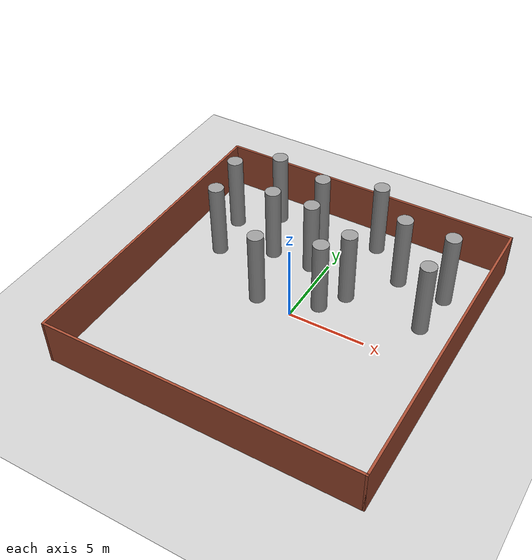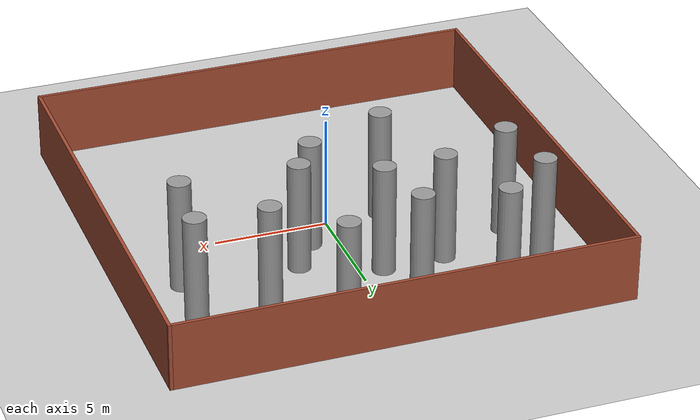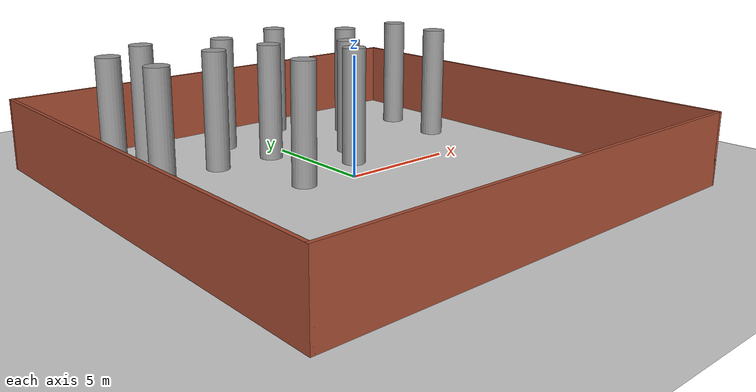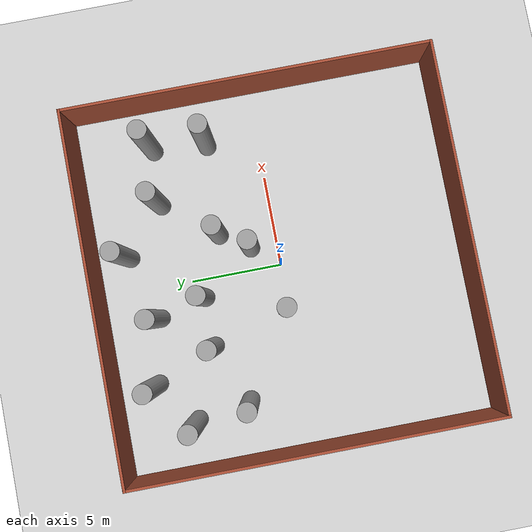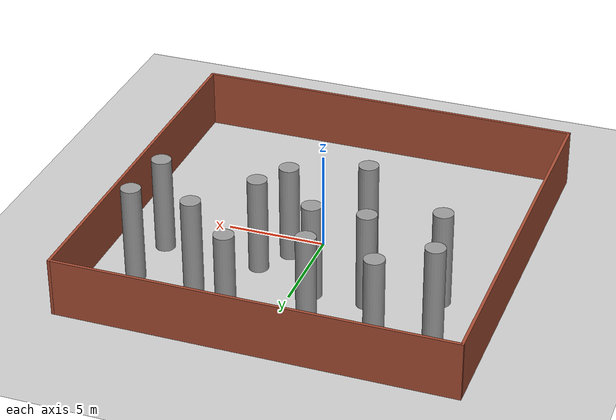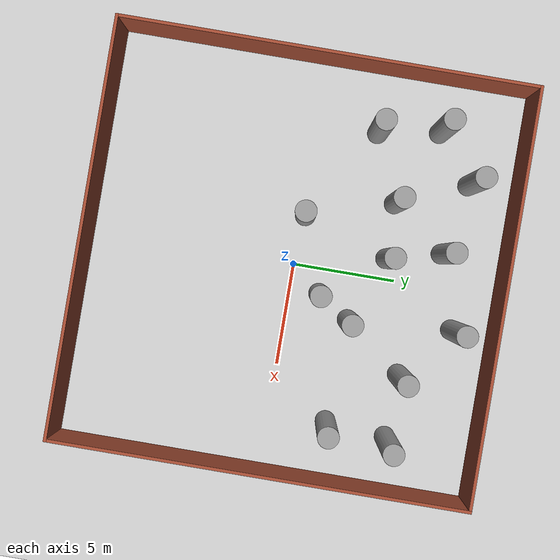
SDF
<sdf version="1.7">
 <world name="default">
  <model name="ground_plane">
   <static>1</static>
   <link name="link">
    <collision name="collision">
     <geometry><plane><normal>0 0 1</normal><size>100 100</size></plane></geometry>
     <surface><friction><ode><mu>100</mu><mu2>50</mu2></ode></friction></surface>
    </collision>
    <visual name="visual">
     <cast_shadows>0</cast_shadows>
     <geometry><plane><normal>0 0 1</normal><size>100 100</size></plane></geometry>
     <material>
      <script><uri>file://media/materials/scripts/gazebo.material</uri><name>Gazebo/Grey</name></script>
     </material>
    </visual>
   </link>
  </model>
  <model name="fence20">
   <link name="Wall_0">
    <collision name="Wall_0_Collision">
     <geometry><box><size>20.15 0.15 3</size></box></geometry>
     <pose>0 0 1.5 0 -0 0</pose>
    </collision>
    <visual name="Wall_0_Visual">
     <pose>0 0 1.5 0 -0 0</pose>
     <geometry><box><size>20.15 0.15 3</size></box></geometry>
     <material>
      <script><uri>file://media/materials/scripts/gazebo.material</uri><name>Gazebo/Bricks</name></script>
      <ambient>1 1 1 1</ambient>
     </material>
     <meta><layer>0</layer></meta>
    </visual>
    <pose>0 -10 0 0 -0 0</pose>
   </link>
   <link name="Wall_1">
    <collision name="Wall_1_Collision">
     <geometry><box><size>20.15 0.15 3</size></box></geometry>
     <pose>0 0 1.5 0 -0 0</pose>
    </collision>
    <visual name="Wall_1_Visual">
     <pose>0 0 1.5 0 -0 0</pose>
     <geometry><box><size>20.15 0.15 3</size></box></geometry>
     <material>
      <script><uri>file://media/materials/scripts/gazebo.material</uri><name>Gazebo/Bricks</name></script>
      <ambient>1 1 1 1</ambient>
     </material>
     <meta><layer>0</layer></meta>
    </visual>
    <pose>10 0 0 0 -0 1.5708</pose>
   </link>
   <link name="Wall_2">
    <collision name="Wall_2_Collision">
     <geometry><box><size>20.15 0.15 3</size></box></geometry>
     <pose>0 0 1.5 0 -0 0</pose>
    </collision>
    <visual name="Wall_2_Visual">
     <pose>0 0 1.5 0 -0 0</pose>
     <geometry><box><size>20.15 0.15 3</size></box></geometry>
     <material>
      <script><uri>file://media/materials/scripts/gazebo.material</uri><name>Gazebo/Bricks</name></script>
      <ambient>1 1 1 1</ambient>
     </material>
     <meta><layer>0</layer></meta>
    </visual>
    <pose>0 10 0 0 -0 3.14159</pose>
   </link>
   <link name="Wall_3">
    <collision name="Wall_3_Collision">
     <geometry><box><size>20.15 0.15 3</size></box></geometry>
     <pose>0 0 1.5 0 -0 0</pose>
    </collision>
    <visual name="Wall_3_Visual">
     <pose>0 0 1.5 0 -0 0</pose>
     <geometry><box><size>20.15 0.15 3</size></box></geometry>
     <material>
      <script><uri>file://media/materials/scripts/gazebo.material</uri><name>Gazebo/Bricks</name></script>
      <ambient>1 1 1 1</ambient>
     </material>
     <meta><layer>0</layer></meta>
    </visual>
    <pose>-10 0 0 0 -0 -1.5708</pose>
   </link>
   <static>1</static>
  </model>
  <model name="cylinder5">
   <link name="link">
    <inertial>
     <mass>1</mass>
     <inertia><ixx>0.145833</ixx><ixy>0</ixy><ixz>0</ixz><iyy>0.145833</iyy><iyz>0</iyz><izz>0.125</izz></inertia>
    </inertial>
    <kinematic>1</kinematic>
    <visual name="visual">
     <geometry><cylinder><radius>0.5</radius><length>5</length></cylinder></geometry>
     <material>
      <script><name>Gazebo/Grey</name><uri>file://media/materials/scripts/gazebo.material</uri></script>
      <shader type="pixel"><normal_map>__default__</normal_map></shader>
      <ambient>0.3 0.3 0.3 1</ambient>
      <diffuse>0.7 0.7 0.7 1</diffuse>
      <specular>0.01 0.01 0.01 1</specular>
      <emissive>0 0 0 1</emissive>
     </material>
    </visual>
    <collision name="collision">
     <geometry><cylinder><radius>0.5</radius><length>5</length></cylinder></geometry>
     <surface>
      <friction>
       <ode><mu>1</mu><mu2>1</mu2><fdir1>0 0 0</fdir1><slip1>0</slip1><slip2>0</slip2></ode>
       <torsional>
        <coefficient>1</coefficient>
        <patch_radius>0</patch_radius>
        <surface_radius>0</surface_radius>
        <use_patch_radius>1</use_patch_radius>
        <ode><slip>0</slip></ode>
       </torsional>
      </friction>
      <bounce><restitution_coefficient>0</restitution_coefficient><threshold>1e+06</threshold></bounce>
      <contact>
       <collide_without_contact>0</collide_without_contact>
       <collide_without_contact_bitmask>1</collide_without_contact_bitmask>
       <collide_bitmask>1</collide_bitmask>
       <ode>
        <soft_cfm>0</soft_cfm>
        <soft_erp>0.2</soft_erp>
        <kp>1e+13</kp>
        <kd>1</kd>
        <max_vel>0.01</max_vel>
        <min_depth>0</min_depth>
       </ode>
       <bullet>
        <split_impulse>1</split_impulse>
        <split_impulse_penetration_threshold>-0.01</split_impulse_penetration_threshold>
        <soft_cfm>0</soft_cfm>
        <soft_erp>0.2</soft_erp>
        <kp>1e+13</kp>
        <kd>1</kd>
       </bullet>
      </contact>
     </surface>
    </collision>
   </link>
   <static>0</static>
   <pose>-2.40539 0.17002 2.62778 0.004453 0.005366 -0.005026</pose>
  </model>
  <model name="cylinder5_clone_9">
   <link name="link">
    <inertial>
     <mass>1</mass>
     <inertia><ixx>0.145833</ixx><ixy>0</ixy><ixz>0</ixz><iyy>0.145833</iyy><iyz>0</iyz><izz>0.125</izz></inertia>
    </inertial>
    <kinematic>1</kinematic>
    <visual name="visual">
     <geometry><cylinder><radius>0.5</radius><length>5</length></cylinder></geometry>
     <material>
      <script><name>Gazebo/Grey</name><uri>file://media/materials/scripts/gazebo.material</uri></script>
      <shader type="pixel"><normal_map>__default__</normal_map></shader>
      <ambient>0.3 0.3 0.3 1</ambient>
      <diffuse>0.7 0.7 0.7 1</diffuse>
      <specular>0.01 0.01 0.01 1</specular>
      <emissive>0 0 0 1</emissive>
     </material>
    </visual>
    <collision name="collision">
     <geometry><cylinder><radius>0.5</radius><length>5</length></cylinder></geometry>
     <surface>
      <friction>
       <ode><mu>1</mu><mu2>1</mu2><fdir1>0 0 0</fdir1><slip1>0</slip1><slip2>0</slip2></ode>
       <torsional>
        <coefficient>1</coefficient>
        <patch_radius>0</patch_radius>
        <surface_radius>0</surface_radius>
        <use_patch_radius>1</use_patch_radius>
        <ode><slip>0</slip></ode>
       </torsional>
      </friction>
      <bounce><restitution_coefficient>0</restitution_coefficient><threshold>1e+06</threshold></bounce>
      <contact>
       <collide_without_contact>0</collide_without_contact>
       <collide_without_contact_bitmask>1</collide_without_contact_bitmask>
       <collide_bitmask>1</collide_bitmask>
       <ode>
        <soft_cfm>0</soft_cfm>
        <soft_erp>0.2</soft_erp>
        <kp>1e+13</kp>
        <kd>1</kd>
        <max_vel>0.01</max_vel>
        <min_depth>0</min_depth>
       </ode>
       <bullet>
        <split_impulse>1</split_impulse>
        <split_impulse_penetration_threshold>-0.01</split_impulse_penetration_threshold>
        <soft_cfm>0</soft_cfm>
        <soft_erp>0.2</soft_erp>
        <kp>1e+13</kp>
        <kd>1</kd>
       </bullet>
      </contact>
     </surface>
    </collision>
   </link>
   <static>0</static>
   <pose>7.62645 5.81246 2.52877 0.001005 0.001206 -0.001</pose>
  </model>
  <model name="cylinder5_clone_10">
   <link name="link">
    <inertial>
     <mass>1</mass>
     <inertia><ixx>0.145833</ixx><ixy>0</ixy><ixz>0</ixz><iyy>0.145833</iyy><iyz>0</iyz><izz>0.125</izz></inertia>
    </inertial>
    <kinematic>1</kinematic>
    <visual name="visual">
     <geometry><cylinder><radius>0.5</radius><length>5</length></cylinder></geometry>
     <material>
      <script><name>Gazebo/Grey</name><uri>file://media/materials/scripts/gazebo.material</uri></script>
      <shader type="pixel"><normal_map>__default__</normal_map></shader>
      <ambient>0.3 0.3 0.3 1</ambient>
      <diffuse>0.7 0.7 0.7 1</diffuse>
      <specular>0.01 0.01 0.01 1</specular>
      <emissive>0 0 0 1</emissive>
     </material>
    </visual>
    <collision name="collision">
     <geometry><cylinder><radius>0.5</radius><length>5</length></cylinder></geometry>
     <surface>
      <friction>
       <ode><mu>1</mu><mu2>1</mu2><fdir1>0 0 0</fdir1><slip1>0</slip1><slip2>0</slip2></ode>
       <torsional>
        <coefficient>1</coefficient>
        <patch_radius>0</patch_radius>
        <surface_radius>0</surface_radius>
        <use_patch_radius>1</use_patch_radius>
        <ode><slip>0</slip></ode>
       </torsional>
      </friction>
      <bounce><restitution_coefficient>0</restitution_coefficient><threshold>1e+06</threshold></bounce>
      <contact>
       <collide_without_contact>0</collide_without_contact>
       <collide_without_contact_bitmask>1</collide_without_contact_bitmask>
       <collide_bitmask>1</collide_bitmask>
       <ode>
        <soft_cfm>0</soft_cfm>
        <soft_erp>0.2</soft_erp>
        <kp>1e+13</kp>
        <kd>1</kd>
        <max_vel>0.01</max_vel>
        <min_depth>0</min_depth>
       </ode>
       <bullet>
        <split_impulse>1</split_impulse>
        <split_impulse_penetration_threshold>-0.01</split_impulse_penetration_threshold>
        <soft_cfm>0</soft_cfm>
        <soft_erp>0.2</soft_erp>
        <kp>1e+13</kp>
        <kd>1</kd>
       </bullet>
      </contact>
     </surface>
    </collision>
   </link>
   <static>0</static>
   <pose>7.35491 2.81834 2.52877 0.001005 0.001206 -0.001</pose>
  </model>
  <model name="cylinder5_clone_11">
   <link name="link">
    <inertial>
     <mass>1</mass>
     <inertia><ixx>0.145833</ixx><ixy>0</ixy><ixz>0</ixz><iyy>0.145833</iyy><iyz>0</iyz><izz>0.125</izz></inertia>
    </inertial>
    <kinematic>1</kinematic>
    <visual name="visual">
     <geometry><cylinder><radius>0.5</radius><length>5</length></cylinder></geometry>
     <material>
      <script><name>Gazebo/Grey</name><uri>file://media/materials/scripts/gazebo.material</uri></script>
      <shader type="pixel"><normal_map>__default__</normal_map></shader>
      <ambient>0.3 0.3 0.3 1</ambient>
      <diffuse>0.7 0.7 0.7 1</diffuse>
      <specular>0.01 0.01 0.01 1</specular>
      <emissive>0 0 0 1</emissive>
     </material>
    </visual>
    <collision name="collision">
     <geometry><cylinder><radius>0.5</radius><length>5</length></cylinder></geometry>
     <surface>
      <friction>
       <ode><mu>1</mu><mu2>1</mu2><fdir1>0 0 0</fdir1><slip1>0</slip1><slip2>0</slip2></ode>
       <torsional>
        <coefficient>1</coefficient>
        <patch_radius>0</patch_radius>
        <surface_radius>0</surface_radius>
        <use_patch_radius>1</use_patch_radius>
        <ode><slip>0</slip></ode>
       </torsional>
      </friction>
      <bounce><restitution_coefficient>0</restitution_coefficient><threshold>1e+06</threshold></bounce>
      <contact>
       <collide_without_contact>0</collide_without_contact>
       <collide_without_contact_bitmask>1</collide_without_contact_bitmask>
       <collide_bitmask>1</collide_bitmask>
       <ode>
        <soft_cfm>0</soft_cfm>
        <soft_erp>0.2</soft_erp>
        <kp>1e+13</kp>
        <kd>1</kd>
        <max_vel>0.01</max_vel>
        <min_depth>0</min_depth>
       </ode>
       <bullet>
        <split_impulse>1</split_impulse>
        <split_impulse_penetration_threshold>-0.01</split_impulse_penetration_threshold>
        <soft_cfm>0</soft_cfm>
        <soft_erp>0.2</soft_erp>
        <kp>1e+13</kp>
        <kd>1</kd>
       </bullet>
      </contact>
     </surface>
    </collision>
   </link>
   <static>0</static>
   <pose>1.91623 8.15775 2.52877 0.001005 0.001206 -0.001</pose>
  </model>
  <model name="cylinder5_clone_12">
   <link name="link">
    <inertial>
     <mass>1</mass>
     <inertia><ixx>0.145833</ixx><ixy>0</ixy><ixz>0</ixz><iyy>0.145833</iyy><iyz>0</iyz><izz>0.125</izz></inertia>
    </inertial>
    <kinematic>1</kinematic>
    <visual name="visual">
     <geometry><cylinder><radius>0.5</radius><length>5</length></cylinder></geometry>
     <material>
      <script><name>Gazebo/Grey</name><uri>file://media/materials/scripts/gazebo.material</uri></script>
      <shader type="pixel"><normal_map>__default__</normal_map></shader>
      <ambient>0.3 0.3 0.3 1</ambient>
      <diffuse>0.7 0.7 0.7 1</diffuse>
      <specular>0.01 0.01 0.01 1</specular>
      <emissive>0 0 0 1</emissive>
     </material>
    </visual>
    <collision name="collision">
     <geometry><cylinder><radius>0.5</radius><length>5</length></cylinder></geometry>
     <surface>
      <friction>
       <ode><mu>1</mu><mu2>1</mu2><fdir1>0 0 0</fdir1><slip1>0</slip1><slip2>0</slip2></ode>
       <torsional>
        <coefficient>1</coefficient>
        <patch_radius>0</patch_radius>
        <surface_radius>0</surface_radius>
        <use_patch_radius>1</use_patch_radius>
        <ode><slip>0</slip></ode>
       </torsional>
      </friction>
      <bounce><restitution_coefficient>0</restitution_coefficient><threshold>1e+06</threshold></bounce>
      <contact>
       <collide_without_contact>0</collide_without_contact>
       <collide_without_contact_bitmask>1</collide_without_contact_bitmask>
       <collide_bitmask>1</collide_bitmask>
       <ode>
        <soft_cfm>0</soft_cfm>
        <soft_erp>0.2</soft_erp>
        <kp>1e+13</kp>
        <kd>1</kd>
        <max_vel>0.01</max_vel>
        <min_depth>0</min_depth>
       </ode>
       <bullet>
        <split_impulse>1</split_impulse>
        <split_impulse_penetration_threshold>-0.01</split_impulse_penetration_threshold>
        <soft_cfm>0</soft_cfm>
        <soft_erp>0.2</soft_erp>
        <kp>1e+13</kp>
        <kd>1</kd>
       </bullet>
      </contact>
     </surface>
    </collision>
   </link>
   <static>0</static>
   <pose>-1 4.42734 2.52877 0.001005 0.001206 -0.001</pose>
  </model>
  <model name="cylinder5_clone_13">
   <link name="link">
    <inertial>
     <mass>1</mass>
     <inertia><ixx>0.145833</ixx><ixy>0</ixy><ixz>0</ixz><iyy>0.145833</iyy><iyz>0</iyz><izz>0.125</izz></inertia>
    </inertial>
    <kinematic>1</kinematic>
    <visual name="visual">
     <geometry><cylinder><radius>0.5</radius><length>5</length></cylinder></geometry>
     <material>
      <script><name>Gazebo/Grey</name><uri>file://media/materials/scripts/gazebo.material</uri></script>
      <shader type="pixel"><normal_map>__default__</normal_map></shader>
      <ambient>0.3 0.3 0.3 1</ambient>
      <diffuse>0.7 0.7 0.7 1</diffuse>
      <specular>0.01 0.01 0.01 1</specular>
      <emissive>0 0 0 1</emissive>
     </material>
    </visual>
    <collision name="collision">
     <geometry><cylinder><radius>0.5</radius><length>5</length></cylinder></geometry>
     <surface>
      <friction>
       <ode><mu>1</mu><mu2>1</mu2><fdir1>0 0 0</fdir1><slip1>0</slip1><slip2>0</slip2></ode>
       <torsional>
        <coefficient>1</coefficient>
        <patch_radius>0</patch_radius>
        <surface_radius>0</surface_radius>
        <use_patch_radius>1</use_patch_radius>
        <ode><slip>0</slip></ode>
       </torsional>
      </friction>
      <bounce><restitution_coefficient>0</restitution_coefficient><threshold>1e+06</threshold></bounce>
      <contact>
       <collide_without_contact>0</collide_without_contact>
       <collide_without_contact_bitmask>1</collide_without_contact_bitmask>
       <collide_bitmask>1</collide_bitmask>
       <ode>
        <soft_cfm>0</soft_cfm>
        <soft_erp>0.2</soft_erp>
        <kp>1e+13</kp>
        <kd>1</kd>
        <max_vel>0.01</max_vel>
        <min_depth>0</min_depth>
       </ode>
       <bullet>
        <split_impulse>1</split_impulse>
        <split_impulse_penetration_threshold>-0.01</split_impulse_penetration_threshold>
        <soft_cfm>0</soft_cfm>
        <soft_erp>0.2</soft_erp>
        <kp>1e+13</kp>
        <kd>1</kd>
       </bullet>
      </contact>
     </surface>
    </collision>
   </link>
   <static>0</static>
   <pose>-5.20311 7.80697 2.52877 0.001005 0.001206 -0.001</pose>
  </model>
  <model name="cylinder5_clone_14">
   <link name="link">
    <inertial>
     <mass>1</mass>
     <inertia><ixx>0.145833</ixx><ixy>0</ixy><ixz>0</ixz><iyy>0.145833</iyy><iyz>0</iyz><izz>0.125</izz></inertia>
    </inertial>
    <kinematic>1</kinematic>
    <visual name="visual">
     <geometry><cylinder><radius>0.5</radius><length>5</length></cylinder></geometry>
     <material>
      <script><name>Gazebo/Grey</name><uri>file://media/materials/scripts/gazebo.material</uri></script>
      <shader type="pixel"><normal_map>__default__</normal_map></shader>
      <ambient>0.3 0.3 0.3 1</ambient>
      <diffuse>0.7 0.7 0.7 1</diffuse>
      <specular>0.01 0.01 0.01 1</specular>
      <emissive>0 0 0 1</emissive>
     </material>
    </visual>
    <collision name="collision">
     <geometry><cylinder><radius>0.5</radius><length>5</length></cylinder></geometry>
     <surface>
      <friction>
       <ode><mu>1</mu><mu2>1</mu2><fdir1>0 0 0</fdir1><slip1>0</slip1><slip2>0</slip2></ode>
       <torsional>
        <coefficient>1</coefficient>
        <patch_radius>0</patch_radius>
        <surface_radius>0</surface_radius>
        <use_patch_radius>1</use_patch_radius>
        <ode><slip>0</slip></ode>
       </torsional>
      </friction>
      <bounce><restitution_coefficient>0</restitution_coefficient><threshold>1e+06</threshold></bounce>
      <contact>
       <collide_without_contact>0</collide_without_contact>
       <collide_without_contact_bitmask>1</collide_without_contact_bitmask>
       <collide_bitmask>1</collide_bitmask>
       <ode>
        <soft_cfm>0</soft_cfm>
        <soft_erp>0.2</soft_erp>
        <kp>1e+13</kp>
        <kd>1</kd>
        <max_vel>0.01</max_vel>
        <min_depth>0</min_depth>
       </ode>
       <bullet>
        <split_impulse>1</split_impulse>
        <split_impulse_penetration_threshold>-0.01</split_impulse_penetration_threshold>
        <soft_cfm>0</soft_cfm>
        <soft_erp>0.2</soft_erp>
        <kp>1e+13</kp>
        <kd>1</kd>
       </bullet>
      </contact>
     </surface>
    </collision>
   </link>
   <static>0</static>
   <pose>-7.51608 6 2.52877 0.001005 0.001206 -0.001</pose>
  </model>
  <model name="cylinder5_clone_15">
   <link name="link">
    <inertial>
     <mass>1</mass>
     <inertia><ixx>0.145833</ixx><ixy>0</ixy><ixz>0</ixz><iyy>0.145833</iyy><iyz>0</iyz><izz>0.125</izz></inertia>
    </inertial>
    <kinematic>1</kinematic>
    <visual name="visual">
     <geometry><cylinder><radius>0.5</radius><length>5</length></cylinder></geometry>
     <material>
      <script><name>Gazebo/Grey</name><uri>file://media/materials/scripts/gazebo.material</uri></script>
      <shader type="pixel"><normal_map>__default__</normal_map></shader>
      <ambient>0.3 0.3 0.3 1</ambient>
      <diffuse>0.7 0.7 0.7 1</diffuse>
      <specular>0.01 0.01 0.01 1</specular>
      <emissive>0 0 0 1</emissive>
     </material>
    </visual>
    <collision name="collision">
     <geometry><cylinder><radius>0.5</radius><length>5</length></cylinder></geometry>
     <surface>
      <friction>
       <ode><mu>1</mu><mu2>1</mu2><fdir1>0 0 0</fdir1><slip1>0</slip1><slip2>0</slip2></ode>
       <torsional>
        <coefficient>1</coefficient>
        <patch_radius>0</patch_radius>
        <surface_radius>0</surface_radius>
        <use_patch_radius>1</use_patch_radius>
        <ode><slip>0</slip></ode>
       </torsional>
      </friction>
      <bounce><restitution_coefficient>0</restitution_coefficient><threshold>1e+06</threshold></bounce>
      <contact>
       <collide_without_contact>0</collide_without_contact>
       <collide_without_contact_bitmask>1</collide_without_contact_bitmask>
       <collide_bitmask>1</collide_bitmask>
       <ode>
        <soft_cfm>0</soft_cfm>
        <soft_erp>0.2</soft_erp>
        <kp>1e+13</kp>
        <kd>1</kd>
        <max_vel>0.01</max_vel>
        <min_depth>0</min_depth>
       </ode>
       <bullet>
        <split_impulse>1</split_impulse>
        <split_impulse_penetration_threshold>-0.01</split_impulse_penetration_threshold>
        <soft_cfm>0</soft_cfm>
        <soft_erp>0.2</soft_erp>
        <kp>1e+13</kp>
        <kd>1</kd>
       </bullet>
      </contact>
     </surface>
    </collision>
   </link>
   <static>0</static>
   <pose>-7 3 2.52877 0.001005 0.001206 -0.001</pose>
  </model>
  <model name="cylinder5_clone_16">
   <link name="link">
    <inertial>
     <mass>1</mass>
     <inertia><ixx>0.145833</ixx><ixy>0</ixy><ixz>0</ixz><iyy>0.145833</iyy><iyz>0</iyz><izz>0.125</izz></inertia>
    </inertial>
    <kinematic>1</kinematic>
    <visual name="visual">
     <geometry><cylinder><radius>0.5</radius><length>5</length></cylinder></geometry>
     <material>
      <script><name>Gazebo/Grey</name><uri>file://media/materials/scripts/gazebo.material</uri></script>
      <shader type="pixel"><normal_map>__default__</normal_map></shader>
      <ambient>0.3 0.3 0.3 1</ambient>
      <diffuse>0.7 0.7 0.7 1</diffuse>
      <specular>0.01 0.01 0.01 1</specular>
      <emissive>0 0 0 1</emissive>
     </material>
    </visual>
    <collision name="collision">
     <geometry><cylinder><radius>0.5</radius><length>5</length></cylinder></geometry>
     <surface>
      <friction>
       <ode><mu>1</mu><mu2>1</mu2><fdir1>0 0 0</fdir1><slip1>0</slip1><slip2>0</slip2></ode>
       <torsional>
        <coefficient>1</coefficient>
        <patch_radius>0</patch_radius>
        <surface_radius>0</surface_radius>
        <use_patch_radius>1</use_patch_radius>
        <ode><slip>0</slip></ode>
       </torsional>
      </friction>
      <bounce><restitution_coefficient>0</restitution_coefficient><threshold>1e+06</threshold></bounce>
      <contact>
       <collide_without_contact>0</collide_without_contact>
       <collide_without_contact_bitmask>1</collide_without_contact_bitmask>
       <collide_bitmask>1</collide_bitmask>
       <ode>
        <soft_cfm>0</soft_cfm>
        <soft_erp>0.2</soft_erp>
        <kp>1e+13</kp>
        <kd>1</kd>
        <max_vel>0.01</max_vel>
        <min_depth>0</min_depth>
       </ode>
       <bullet>
        <split_impulse>1</split_impulse>
        <split_impulse_penetration_threshold>-0.01</split_impulse_penetration_threshold>
        <soft_cfm>0</soft_cfm>
        <soft_erp>0.2</soft_erp>
        <kp>1e+13</kp>
        <kd>1</kd>
       </bullet>
      </contact>
     </surface>
    </collision>
   </link>
   <static>0</static>
   <pose>2.26917 3.05707 2.52877 0.001005 0.001206 -0.001</pose>
  </model>
  <model name="cylinder5_clone_17">
   <link name="link">
    <inertial>
     <mass>1</mass>
     <inertia><ixx>0.145833</ixx><ixy>0</ixy><ixz>0</ixz><iyy>0.145833</iyy><iyz>0</iyz><izz>0.125</izz></inertia>
    </inertial>
    <kinematic>1</kinematic>
    <visual name="visual">
     <geometry><cylinder><radius>0.5</radius><length>5</length></cylinder></geometry>
     <material>
      <script><name>Gazebo/Grey</name><uri>file://media/materials/scripts/gazebo.material</uri></script>
      <shader type="pixel"><normal_map>__default__</normal_map></shader>
      <ambient>0.3 0.3 0.3 1</ambient>
      <diffuse>0.7 0.7 0.7 1</diffuse>
      <specular>0.01 0.01 0.01 1</specular>
      <emissive>0 0 0 1</emissive>
     </material>
    </visual>
    <collision name="collision">
     <geometry><cylinder><radius>0.5</radius><length>5</length></cylinder></geometry>
     <surface>
      <friction>
       <ode><mu>1</mu><mu2>1</mu2><fdir1>0 0 0</fdir1><slip1>0</slip1><slip2>0</slip2></ode>
       <torsional>
        <coefficient>1</coefficient>
        <patch_radius>0</patch_radius>
        <surface_radius>0</surface_radius>
        <use_patch_radius>1</use_patch_radius>
        <ode><slip>0</slip></ode>
       </torsional>
      </friction>
      <bounce><restitution_coefficient>0</restitution_coefficient><threshold>1e+06</threshold></bounce>
      <contact>
       <collide_without_contact>0</collide_without_contact>
       <collide_without_contact_bitmask>1</collide_without_contact_bitmask>
       <collide_bitmask>1</collide_bitmask>
       <ode>
        <soft_cfm>0</soft_cfm>
        <soft_erp>0.2</soft_erp>
        <kp>1e+13</kp>
        <kd>1</kd>
        <max_vel>0.01</max_vel>
        <min_depth>0</min_depth>
       </ode>
       <bullet>
        <split_impulse>1</split_impulse>
        <split_impulse_penetration_threshold>-0.01</split_impulse_penetration_threshold>
        <soft_cfm>0</soft_cfm>
        <soft_erp>0.2</soft_erp>
        <kp>1e+13</kp>
        <kd>1</kd>
       </bullet>
      </contact>
     </surface>
    </collision>
   </link>
   <static>0</static>
   <pose>1.22943 1.45949 2.52892 0.001005 0.001206 -0.001</pose>
  </model>
  <model name="cylinder5_clone_20">
   <link name="link">
    <inertial>
     <mass>1</mass>
     <inertia><ixx>0.145833</ixx><ixy>0</ixy><ixz>0</ixz><iyy>0.145833</iyy><iyz>0</iyz><izz>0.125</izz></inertia>
    </inertial>
    <kinematic>1</kinematic>
    <visual name="visual">
     <geometry><cylinder><radius>0.5</radius><length>5</length></cylinder></geometry>
     <material>
      <script><name>Gazebo/Grey</name><uri>file://media/materials/scripts/gazebo.material</uri></script>
      <shader type="pixel"><normal_map>__default__</normal_map></shader>
      <ambient>0.3 0.3 0.3 1</ambient>
      <diffuse>0.7 0.7 0.7 1</diffuse>
      <specular>0.01 0.01 0.01 1</specular>
      <emissive>0 0 0 1</emissive>
     </material>
    </visual>
    <collision name="collision">
     <geometry><cylinder><radius>0.5</radius><length>5</length></cylinder></geometry>
     <surface>
      <friction>
       <ode><mu>1</mu><mu2>1</mu2><fdir1>0 0 0</fdir1><slip1>0</slip1><slip2>0</slip2></ode>
       <torsional>
        <coefficient>1</coefficient>
        <patch_radius>0</patch_radius>
        <surface_radius>0</surface_radius>
        <use_patch_radius>1</use_patch_radius>
        <ode><slip>0</slip></ode>
       </torsional>
      </friction>
      <bounce><restitution_coefficient>0</restitution_coefficient><threshold>1e+06</threshold></bounce>
      <contact>
       <collide_without_contact>0</collide_without_contact>
       <collide_without_contact_bitmask>1</collide_without_contact_bitmask>
       <collide_bitmask>1</collide_bitmask>
       <ode>
        <soft_cfm>0</soft_cfm>
        <soft_erp>0.2</soft_erp>
        <kp>1e+13</kp>
        <kd>1</kd>
        <max_vel>0.01</max_vel>
        <min_depth>0</min_depth>
       </ode>
       <bullet>
        <split_impulse>1</split_impulse>
        <split_impulse_penetration_threshold>-0.01</split_impulse_penetration_threshold>
        <soft_cfm>0</soft_cfm>
        <soft_erp>0.2</soft_erp>
        <kp>1e+13</kp>
        <kd>1</kd>
       </bullet>
      </contact>
     </surface>
    </collision>
   </link>
   <static>0</static>
   <pose>4.50298 5.93911 2.52877 0.001005 0.001206 -0.001</pose>
  </model>
  <model name="cylinder5_clone_21">
   <link name="link">
    <inertial>
     <mass>1</mass>
     <inertia><ixx>0.145833</ixx><ixy>0</ixy><ixz>0</ixz><iyy>0.145833</iyy><iyz>0</iyz><izz>0.125</izz></inertia>
    </inertial>
    <kinematic>1</kinematic>
    <visual name="visual">
     <geometry><cylinder><radius>0.5</radius><length>5</length></cylinder></geometry>
     <material>
      <script><name>Gazebo/Grey</name><uri>file://media/materials/scripts/gazebo.material</uri></script>
      <shader type="pixel"><normal_map>__default__</normal_map></shader>
      <ambient>0.3 0.3 0.3 1</ambient>
      <diffuse>0.7 0.7 0.7 1</diffuse>
      <specular>0.01 0.01 0.01 1</specular>
      <emissive>0 0 0 1</emissive>
     </material>
    </visual>
    <collision name="collision">
     <geometry><cylinder><radius>0.5</radius><length>5</length></cylinder></geometry>
     <surface>
      <friction>
       <ode><mu>1</mu><mu2>1</mu2><fdir1>0 0 0</fdir1><slip1>0</slip1><slip2>0</slip2></ode>
       <torsional>
        <coefficient>1</coefficient>
        <patch_radius>0</patch_radius>
        <surface_radius>0</surface_radius>
        <use_patch_radius>1</use_patch_radius>
        <ode><slip>0</slip></ode>
       </torsional>
      </friction>
      <bounce><restitution_coefficient>0</restitution_coefficient><threshold>1e+06</threshold></bounce>
      <contact>
       <collide_without_contact>0</collide_without_contact>
       <collide_without_contact_bitmask>1</collide_without_contact_bitmask>
       <collide_bitmask>1</collide_bitmask>
       <ode>
        <soft_cfm>0</soft_cfm>
        <soft_erp>0.2</soft_erp>
        <kp>1e+13</kp>
        <kd>1</kd>
        <max_vel>0.01</max_vel>
        <min_depth>0</min_depth>
       </ode>
       <bullet>
        <split_impulse>1</split_impulse>
        <split_impulse_penetration_threshold>-0.01</split_impulse_penetration_threshold>
        <soft_cfm>0</soft_cfm>
        <soft_erp>0.2</soft_erp>
        <kp>1e+13</kp>
        <kd>1</kd>
       </bullet>
      </contact>
     </surface>
    </collision>
   </link>
   <static>0</static>
   <pose>-1.67657 7.07411 2.52877 0.001005 0.001206 -0.001</pose>
  </model>
  <model name="cylinder5_clone_24">
   <link name="link">
    <inertial>
     <mass>1</mass>
     <inertia><ixx>0.145833</ixx><ixy>0</ixy><ixz>0</ixz><iyy>0.145833</iyy><iyz>0</iyz><izz>0.125</izz></inertia>
    </inertial>
    <kinematic>1</kinematic>
    <visual name="visual">
     <geometry><cylinder><radius>0.5</radius><length>5</length></cylinder></geometry>
     <material>
      <script><name>Gazebo/Grey</name><uri>file://media/materials/scripts/gazebo.material</uri></script>
      <shader type="pixel"><normal_map>__default__</normal_map></shader>
      <ambient>0.3 0.3 0.3 1</ambient>
      <diffuse>0.7 0.7 0.7 1</diffuse>
      <specular>0.01 0.01 0.01 1</specular>
      <emissive>0 0 0 1</emissive>
     </material>
    </visual>
    <collision name="collision">
     <geometry><cylinder><radius>0.5</radius><length>5</length></cylinder></geometry>
     <surface>
      <friction>
       <ode><mu>1</mu><mu2>1</mu2><fdir1>0 0 0</fdir1><slip1>0</slip1><slip2>0</slip2></ode>
       <torsional>
        <coefficient>1</coefficient>
        <patch_radius>0</patch_radius>
        <surface_radius>0</surface_radius>
        <use_patch_radius>1</use_patch_radius>
        <ode><slip>0</slip></ode>
       </torsional>
      </friction>
      <bounce><restitution_coefficient>0</restitution_coefficient><threshold>1e+06</threshold></bounce>
      <contact>
       <collide_without_contact>0</collide_without_contact>
       <collide_without_contact_bitmask>1</collide_without_contact_bitmask>
       <collide_bitmask>1</collide_bitmask>
       <ode>
        <soft_cfm>0</soft_cfm>
        <soft_erp>0.2</soft_erp>
        <kp>1e+13</kp>
        <kd>1</kd>
        <max_vel>0.01</max_vel>
        <min_depth>0</min_depth>
       </ode>
       <bullet>
        <split_impulse>1</split_impulse>
        <split_impulse_penetration_threshold>-0.01</split_impulse_penetration_threshold>
        <soft_cfm>0</soft_cfm>
        <soft_erp>0.2</soft_erp>
        <kp>1e+13</kp>
        <kd>1</kd>
       </bullet>
      </contact>
     </surface>
    </collision>
   </link>
   <static>0</static>
   <pose>-3.7226 4.3824 2.57092 0.002475 0.002975 -0.002716</pose>
  </model>
 </world>
</sdf>
